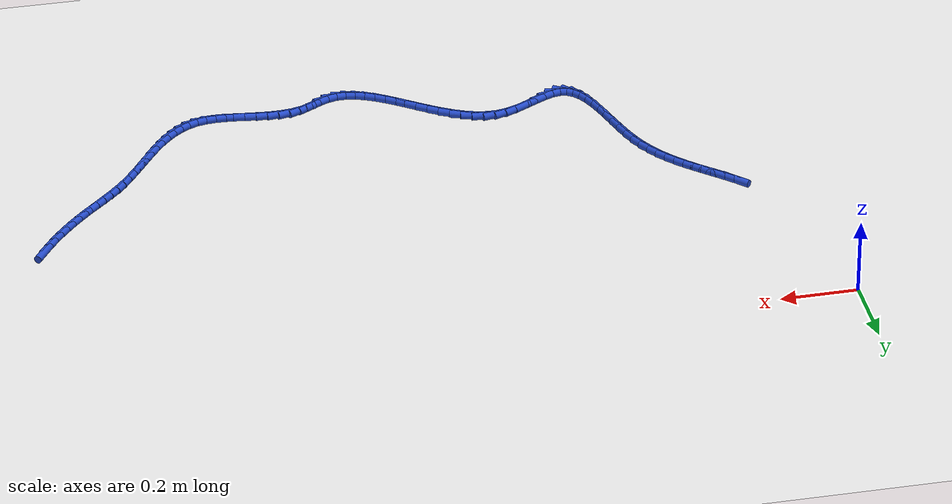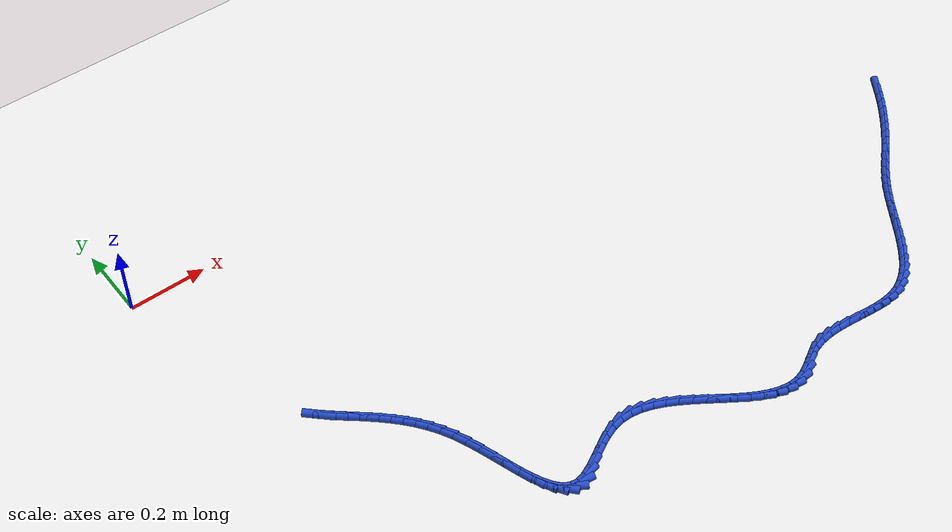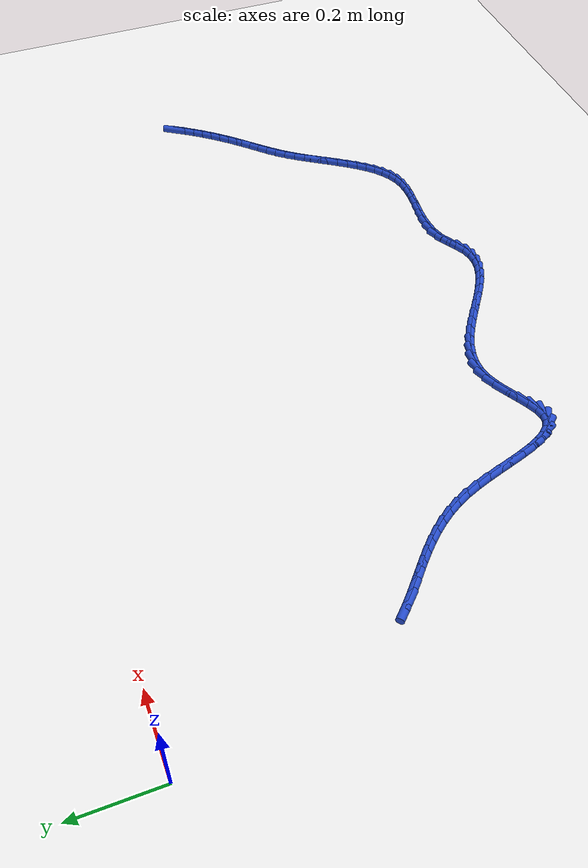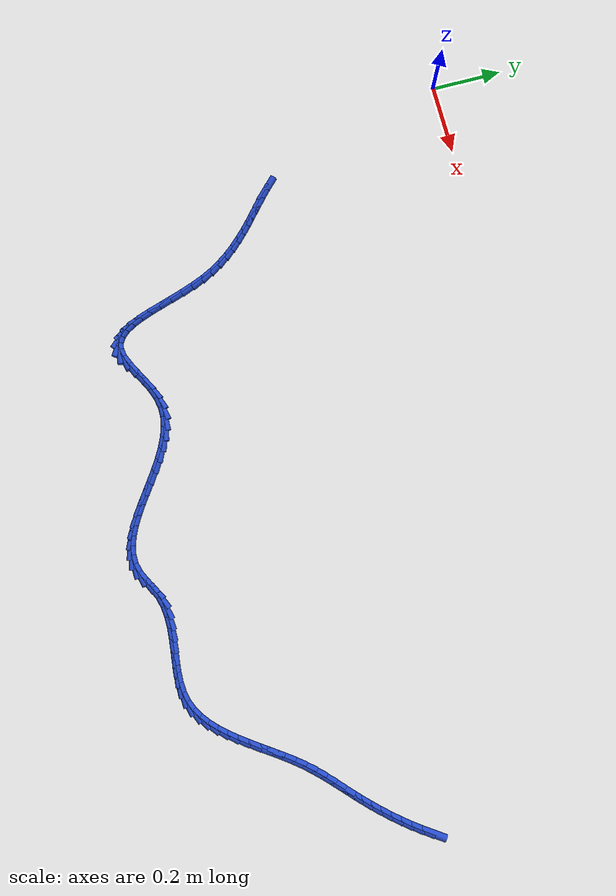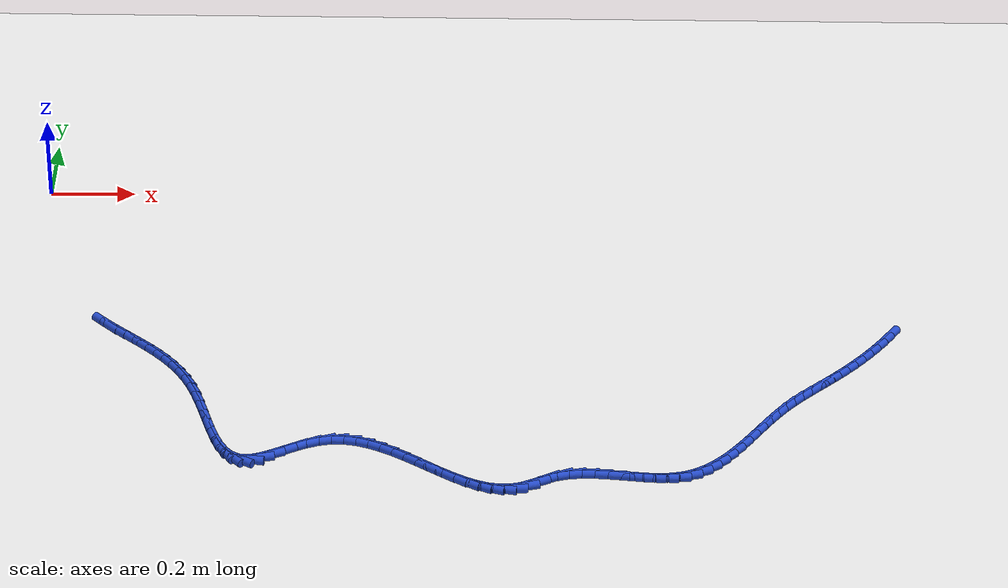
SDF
<sdf version="1.6">
 <world name="default">
  <model name="ground_plane">
   <static>1</static>
   <link name="link">
    <collision name="collision">
     <geometry><plane><normal>0 0 1</normal><size>100 100</size></plane></geometry>
     <surface><friction><ode><mu>100</mu><mu2>50</mu2></ode></friction></surface>
    </collision>
    <visual name="visual">
     <cast_shadows>0</cast_shadows>
     <geometry><plane><normal>0 0 1</normal><size>100 100</size></plane></geometry>
     <material>
      <script><uri>file://media/materials/scripts/gazebo.material</uri><name>Gazebo/WhiteGlow</name></script>
     </material>
    </visual>
   </link>
  </model>
  <model name="line">
   <link name="link_146">
    <pose>1.9613702758241185 -0.5650723410601403 0.01 0 1.57 0.9764073009839448</pose>
    <collision name="collision">
     <geometry><cylinder><radius>0.01</radius><length>0.08</length></cylinder></geometry>
    </collision>
    <visual name="visual">
     <material>
      <script><name>Gazebo/Blue</name><uri>file://media/materials/scripts/gazebo.material</uri></script>
     </material>
     <geometry><cylinder><radius>0.01</radius><length>0.08</length></cylinder></geometry>
    </visual>
   </link>
   <link name="link_147">
    <pose>1.9452535063060237 -0.5889161474131723 0.01 0 1.57 0.9396007451087953</pose>
    <collision name="collision">
     <geometry><cylinder><radius>0.01</radius><length>0.08</length></cylinder></geometry>
    </collision>
    <visual name="visual">
     <material>
      <script><name>Gazebo/Blue</name><uri>file://media/materials/scripts/gazebo.material</uri></script>
     </material>
     <geometry><cylinder><radius>0.01</radius><length>0.08</length></cylinder></geometry>
    </visual>
   </link>
   <link name="link_148">
    <pose>1.9282345556770946 -0.6121995581208013 0.01 0 1.57 0.9057461529218316</pose>
    <collision name="collision">
     <geometry><cylinder><radius>0.01</radius><length>0.08</length></cylinder></geometry>
    </collision>
    <visual name="visual">
     <material>
      <script><name>Gazebo/Blue</name><uri>file://media/materials/scripts/gazebo.material</uri></script>
     </material>
     <geometry><cylinder><radius>0.01</radius><length>0.08</length></cylinder></geometry>
    </visual>
   </link>
   <link name="link_149">
    <pose>1.9104306109496643 -0.6349020425918078 0.01 0 1.57 0.8746117254032889</pose>
    <collision name="collision">
     <geometry><cylinder><radius>0.01</radius><length>0.08</length></cylinder></geometry>
    </collision>
    <visual name="visual">
     <material>
      <script><name>Gazebo/Blue</name><uri>file://media/materials/scripts/gazebo.material</uri></script>
     </material>
     <geometry><cylinder><radius>0.01</radius><length>0.08</length></cylinder></geometry>
    </visual>
   </link>
   <link name="link_150">
    <pose>1.8919588591360657 -0.6570030702349723 0.01 0 1.57 0.8459803008798261</pose>
    <collision name="collision">
     <geometry><cylinder><radius>0.01</radius><length>0.08</length></cylinder></geometry>
    </collision>
    <visual name="visual">
     <material>
      <script><name>Gazebo/Blue</name><uri>file://media/materials/scripts/gazebo.material</uri></script>
     </material>
     <geometry><cylinder><radius>0.01</radius><length>0.08</length></cylinder></geometry>
    </visual>
   </link>
   <link name="link_151">
    <pose>1.8729364872486332 -0.6784821104590758 0.01 0 1.57 0.8196522584449281</pose>
    <collision name="collision">
     <geometry><cylinder><radius>0.01</radius><length>0.08</length></cylinder></geometry>
    </collision>
    <visual name="visual">
     <material>
      <script><name>Gazebo/Blue</name><uri>file://media/materials/scripts/gazebo.material</uri></script>
     </material>
     <geometry><cylinder><radius>0.01</radius><length>0.08</length></cylinder></geometry>
    </visual>
   </link>
   <link name="link_152">
    <pose>1.8534806822996992 -0.6993186326728987 0.01 0 1.57 0.7954470764126949</pose>
    <collision name="collision">
     <geometry><cylinder><radius>0.01</radius><length>0.08</length></cylinder></geometry>
    </collision>
    <visual name="visual">
     <material>
      <script><name>Gazebo/Blue</name><uri>file://media/materials/scripts/gazebo.material</uri></script>
     </material>
     <geometry><cylinder><radius>0.01</radius><length>0.08</length></cylinder></geometry>
    </visual>
   </link>
   <link name="link_153">
    <pose>1.8337086313015982 -0.7194921062852218 0.01 0 1.57 0.7747744593314235</pose>
    <collision name="collision">
     <geometry><cylinder><radius>0.01</radius><length>0.08</length></cylinder></geometry>
    </collision>
    <visual name="visual">
     <material>
      <script><name>Gazebo/Blue</name><uri>file://media/materials/scripts/gazebo.material</uri></script>
     </material>
     <geometry><cylinder><radius>0.01</radius><length>0.08</length></cylinder></geometry>
    </visual>
   </link>
   <link name="link_154">
    <pose>1.8137415879393823 -0.7390393458061346 0.01 0 1.57 0.7651973616180738</pose>
    <collision name="collision">
     <geometry><cylinder><radius>0.01</radius><length>0.08</length></cylinder></geometry>
    </collision>
    <visual name="visual">
     <material>
      <script><name>Gazebo/Blue</name><uri>file://media/materials/scripts/gazebo.material</uri></script>
     </material>
     <geometry><cylinder><radius>0.01</radius><length>0.08</length></cylinder></geometry>
    </visual>
   </link>
   <link name="link_155">
    <pose>1.79372000759917 -0.7582679334147244 0.01 0 1.57 0.7692719922578977</pose>
    <collision name="collision">
     <geometry><cylinder><radius>0.01</radius><length>0.08</length></cylinder></geometry>
    </collision>
    <visual name="visual">
     <material>
      <script><name>Gazebo/Blue</name><uri>file://media/materials/scripts/gazebo.material</uri></script>
     </material>
     <geometry><cylinder><radius>0.01</radius><length>0.08</length></cylinder></geometry>
    </visual>
   </link>
   <link name="link_156">
    <pose>1.7737900075970328 -0.7775652914860385 0.01 0 1.57 0.7869511971120173</pose>
    <collision name="collision">
     <geometry><cylinder><radius>0.01</radius><length>0.08</length></cylinder></geometry>
    </collision>
    <visual name="visual">
     <material>
      <script><name>Gazebo/Blue</name><uri>file://media/materials/scripts/gazebo.material</uri></script>
     </material>
     <geometry><cylinder><radius>0.01</radius><length>0.08</length></cylinder></geometry>
    </visual>
   </link>
   <link name="link_157">
    <pose>1.7540977060598821 -0.7973188538289471 0.01 0 1.57 0.8176809758326741</pose>
    <collision name="collision">
     <geometry><cylinder><radius>0.01</radius><length>0.08</length></cylinder></geometry>
    </collision>
    <visual name="visual">
     <material>
      <script><name>Gazebo/Blue</name><uri>file://media/materials/scripts/gazebo.material</uri></script>
     </material>
     <geometry><cylinder><radius>0.01</radius><length>0.08</length></cylinder></geometry>
    </visual>
   </link>
   <link name="link_158">
    <pose>1.7347892211146276 -0.8179160542523207 0.01 0 1.57 0.8603611152247842</pose>
    <collision name="collision">
     <geometry><cylinder><radius>0.01</radius><length>0.08</length></cylinder></geometry>
    </collision>
    <visual name="visual">
     <material>
      <script><name>Gazebo/Blue</name><uri>file://media/materials/scripts/gazebo.material</uri></script>
     </material>
     <geometry><cylinder><radius>0.01</radius><length>0.08</length></cylinder></geometry>
    </visual>
   </link>
   <link name="link_159">
    <pose>1.7160106708642235 -0.8397443265038634 0.01 0 1.57 0.908736056514942</pose>
    <collision name="collision">
     <geometry><cylinder><radius>0.01</radius><length>0.08</length></cylinder></geometry>
    </collision>
    <visual name="visual">
     <material>
      <script><name>Gazebo/Blue</name><uri>file://media/materials/scripts/gazebo.material</uri></script>
     </material>
     <geometry><cylinder><radius>0.01</radius><length>0.08</length></cylinder></geometry>
    </visual>
   </link>
   <link name="link_160">
    <pose>1.6978505848983496 -0.863044068678062 0.01 0 1.57 0.9445140722194537</pose>
    <collision name="collision">
     <geometry><cylinder><radius>0.01</radius><length>0.08</length></cylinder></geometry>
    </collision>
    <visual name="visual">
     <material>
      <script><name>Gazebo/Blue</name><uri>file://media/materials/scripts/gazebo.material</uri></script>
     </material>
     <geometry><cylinder><radius>0.01</radius><length>0.08</length></cylinder></geometry>
    </visual>
   </link>
   <link name="link_161">
    <pose>1.6801722777886856 -0.8874806572999523 0.01 0 1.57 0.9649139812558574</pose>
    <collision name="collision">
     <geometry><cylinder><radius>0.01</radius><length>0.08</length></cylinder></geometry>
    </collision>
    <visual name="visual">
     <material>
      <script><name>Gazebo/Blue</name><uri>file://media/materials/scripts/gazebo.material</uri></script>
     </material>
     <geometry><cylinder><radius>0.01</radius><length>0.08</length></cylinder></geometry>
    </visual>
   </link>
   <link name="link_162">
    <pose>1.6627840165757342 -0.9125789209060114 0.01 0 1.57 0.9710197391764839</pose>
    <collision name="collision">
     <geometry><cylinder><radius>0.01</radius><length>0.08</length></cylinder></geometry>
    </collision>
    <visual name="visual">
     <material>
      <script><name>Gazebo/Blue</name><uri>file://media/materials/scripts/gazebo.material</uri></script>
     </material>
     <geometry><cylinder><radius>0.01</radius><length>0.08</length></cylinder></geometry>
    </visual>
   </link>
   <link name="link_163">
    <pose>1.645494068299997 -0.9378636880327171 0.01 0 1.57 0.963135139433481</pose>
    <collision name="collision">
     <geometry><cylinder><radius>0.01</radius><length>0.08</length></cylinder></geometry>
    </collision>
    <visual name="visual">
     <material>
      <script><name>Gazebo/Blue</name><uri>file://media/materials/scripts/gazebo.material</uri></script>
     </material>
     <geometry><cylinder><radius>0.01</radius><length>0.08</length></cylinder></geometry>
    </visual>
   </link>
   <link name="link_164">
    <pose>1.6281107000019766 -0.9628597872165465 0.01 0 1.57 0.9407849093785468</pose>
    <collision name="collision">
     <geometry><cylinder><radius>0.01</radius><length>0.08</length></cylinder></geometry>
    </collision>
    <visual name="visual">
     <material>
      <script><name>Gazebo/Blue</name><uri>file://media/materials/scripts/gazebo.material</uri></script>
     </material>
     <geometry><cylinder><radius>0.01</radius><length>0.08</length></cylinder></geometry>
    </visual>
   </link>
   <link name="link_165">
    <pose>1.6104421787221739 -0.9870920469939767 0.01 0 1.57 0.902698708071725</pose>
    <collision name="collision">
     <geometry><cylinder><radius>0.01</radius><length>0.08</length></cylinder></geometry>
    </collision>
    <visual name="visual">
     <material>
      <script><name>Gazebo/Blue</name><uri>file://media/materials/scripts/gazebo.material</uri></script>
     </material>
     <geometry><cylinder><radius>0.01</radius><length>0.08</length></cylinder></geometry>
    </visual>
   </link>
   <link name="link_166">
    <pose>1.5922967715010918 -1.0100852959014854 0.01 0 1.57 0.8468037881241035</pose>
    <collision name="collision">
     <geometry><cylinder><radius>0.01</radius><length>0.08</length></cylinder></geometry>
    </collision>
    <visual name="visual">
     <material>
      <script><name>Gazebo/Blue</name><uri>file://media/materials/scripts/gazebo.material</uri></script>
     </material>
     <geometry><cylinder><radius>0.01</radius><length>0.08</length></cylinder></geometry>
    </visual>
   </link>
   <link name="link_167">
    <pose>1.573482745379232 -1.0313643624755497 0.01 0 1.57 0.7703166571582392</pose>
    <collision name="collision">
     <geometry><cylinder><radius>0.01</radius><length>0.08</length></cylinder></geometry>
    </collision>
    <visual name="visual">
     <material>
      <script><name>Gazebo/Blue</name><uri>file://media/materials/scripts/gazebo.material</uri></script>
     </material>
     <geometry><cylinder><radius>0.01</radius><length>0.08</length></cylinder></geometry>
    </visual>
   </link>
   <link name="link_168">
    <pose>1.5538083673970957 -1.0504540752526474 0.01 0 1.57 0.6701351783459576</pose>
    <collision name="collision">
     <geometry><cylinder><radius>0.01</radius><length>0.08</length></cylinder></geometry>
    </collision>
    <visual name="visual">
     <material>
      <script><name>Gazebo/Blue</name><uri>file://media/materials/scripts/gazebo.material</uri></script>
     </material>
     <geometry><cylinder><radius>0.01</radius><length>0.08</length></cylinder></geometry>
    </visual>
   </link>
   <link name="link_169">
    <pose>1.5330819045951867 -1.0668792627692554 0.01 0 1.57 0.5438702884663065</pose>
    <collision name="collision">
     <geometry><cylinder><radius>0.01</radius><length>0.08</length></cylinder></geometry>
    </collision>
    <visual name="visual">
     <material>
      <script><name>Gazebo/Blue</name><uri>file://media/materials/scripts/gazebo.material</uri></script>
     </material>
     <geometry><cylinder><radius>0.01</radius><length>0.08</length></cylinder></geometry>
    </visual>
   </link>
   <link name="link_170">
    <pose>1.5111116240140052 -1.0801647535618508 0.01 0 1.57 0.39180930444206213</pose>
    <collision name="collision">
     <geometry><cylinder><radius>0.01</radius><length>0.08</length></cylinder></geometry>
    </collision>
    <visual name="visual">
     <material>
      <script><name>Gazebo/Blue</name><uri>file://media/materials/scripts/gazebo.material</uri></script>
     </material>
     <geometry><cylinder><radius>0.01</radius><length>0.08</length></cylinder></geometry>
    </visual>
   </link>
   <link name="link_171">
    <pose>1.4877057926940538 -1.0898353761669117 0.01 0 1.57 0.22217547257328926</pose>
    <collision name="collision">
     <geometry><cylinder><radius>0.01</radius><length>0.08</length></cylinder></geometry>
    </collision>
    <visual name="visual">
     <material>
      <script><name>Gazebo/Blue</name><uri>file://media/materials/scripts/gazebo.material</uri></script>
     </material>
     <geometry><cylinder><radius>0.01</radius><length>0.08</length></cylinder></geometry>
    </visual>
   </link>
   <link name="link_172">
    <pose>1.4626970450483936 -1.0954849721868123 0.01 0 1.57 0.07675678753046156</pose>
    <collision name="collision">
     <geometry><cylinder><radius>0.01</radius><length>0.08</length></cylinder></geometry>
    </collision>
    <visual name="visual">
     <material>
      <script><name>Gazebo/Blue</name><uri>file://media/materials/scripts/gazebo.material</uri></script>
     </material>
     <geometry><cylinder><radius>0.01</radius><length>0.08</length></cylinder></geometry>
    </visual>
   </link>
   <link name="link_173">
    <pose>1.4362057703383677 -1.0975223600647241 0.01 0 1.57 -0.022916729695242173</pose>
    <collision name="collision">
     <geometry><cylinder><radius>0.01</radius><length>0.08</length></cylinder></geometry>
    </collision>
    <visual name="visual">
     <material>
      <script><name>Gazebo/Blue</name><uri>file://media/materials/scripts/gazebo.material</uri></script>
     </material>
     <geometry><cylinder><radius>0.01</radius><length>0.08</length></cylinder></geometry>
    </visual>
   </link>
   <link name="link_174">
    <pose>1.4085401577819965 -1.0968882436883567 0.01 0 1.57 -0.08238914372151765</pose>
    <collision name="collision">
     <geometry><cylinder><radius>0.01</radius><length>0.08</length></cylinder></geometry>
    </collision>
    <visual name="visual">
     <material>
      <script><name>Gazebo/Blue</name><uri>file://media/materials/scripts/gazebo.material</uri></script>
     </material>
     <geometry><cylinder><radius>0.01</radius><length>0.08</length></cylinder></geometry>
    </visual>
   </link>
   <link name="link_175">
    <pose>1.3800116247011167 -1.0945324695536607 0.01 0 1.57 -0.10713911201137834</pose>
    <collision name="collision">
     <geometry><cylinder><radius>0.01</radius><length>0.08</length></cylinder></geometry>
    </collision>
    <visual name="visual">
     <material>
      <script><name>Gazebo/Blue</name><uri>file://media/materials/scripts/gazebo.material</uri></script>
     </material>
     <geometry><cylinder><radius>0.01</radius><length>0.08</length></cylinder></geometry>
    </visual>
   </link>
   <link name="link_176">
    <pose>1.3509315884175621 -1.0914048841565875 0.01 0 1.57 -0.10026084898970024</pose>
    <collision name="collision">
     <geometry><cylinder><radius>0.01</radius><length>0.08</length></cylinder></geometry>
    </collision>
    <visual name="visual">
     <material>
      <script><name>Gazebo/Blue</name><uri>file://media/materials/scripts/gazebo.material</uri></script>
     </material>
     <geometry><cylinder><radius>0.01</radius><length>0.08</length></cylinder></geometry>
    </visual>
   </link>
   <link name="link_177">
    <pose>1.321611466253168 -1.0884553339930876 0.01 0 1.57 -0.06220149353363286</pose>
    <collision name="collision">
     <geometry><cylinder><radius>0.01</radius><length>0.08</length></cylinder></geometry>
    </collision>
    <visual name="visual">
     <material>
      <script><name>Gazebo/Blue</name><uri>file://media/materials/scripts/gazebo.material</uri></script>
     </material>
     <geometry><cylinder><radius>0.01</radius><length>0.08</length></cylinder></geometry>
    </visual>
   </link>
   <link name="link_178">
    <pose>1.2923626755297684 -1.0866336655591116 0.01 0 1.57 0.008870390886680886</pose>
    <collision name="collision">
     <geometry><cylinder><radius>0.01</radius><length>0.08</length></cylinder></geometry>
    </collision>
    <visual name="visual">
     <material>
      <script><name>Gazebo/Blue</name><uri>file://media/materials/scripts/gazebo.material</uri></script>
     </material>
     <geometry><cylinder><radius>0.01</radius><length>0.08</length></cylinder></geometry>
    </visual>
   </link>
   <link name="link_179">
    <pose>1.2634966335691988 -1.0868897253506105 0.01 0 1.57 0.11603361277166177</pose>
    <collision name="collision">
     <geometry><cylinder><radius>0.01</radius><length>0.08</length></cylinder></geometry>
    </collision>
    <visual name="visual">
     <material>
      <script><name>Gazebo/Blue</name><uri>file://media/materials/scripts/gazebo.material</uri></script>
     </material>
     <geometry><cylinder><radius>0.01</radius><length>0.08</length></cylinder></geometry>
    </visual>
   </link>
   <link name="link_180">
    <pose>1.2353247576932942 -1.090173359863535 0.01 0 1.57 0.26117660452858166</pose>
    <collision name="collision">
     <geometry><cylinder><radius>0.01</radius><length>0.08</length></cylinder></geometry>
    </collision>
    <visual name="visual">
     <material>
      <script><name>Gazebo/Blue</name><uri>file://media/materials/scripts/gazebo.material</uri></script>
     </material>
     <geometry><cylinder><radius>0.01</radius><length>0.08</length></cylinder></geometry>
    </visual>
   </link>
   <link name="link_181">
    <pose>1.2081584652238893 -1.097434415593836 0.01 0 1.57 0.4289839174552372</pose>
    <collision name="collision">
     <geometry><cylinder><radius>0.01</radius><length>0.08</length></cylinder></geometry>
    </collision>
    <visual name="visual">
     <material>
      <script><name>Gazebo/Blue</name><uri>file://media/materials/scripts/gazebo.material</uri></script>
     </material>
     <geometry><cylinder><radius>0.01</radius><length>0.08</length></cylinder></geometry>
    </visual>
   </link>
   <link name="link_182">
    <pose>1.182250830087267 -1.1092843553952614 0.01 0 1.57 0.5100248529614992</pose>
    <collision name="collision">
     <geometry><cylinder><radius>0.01</radius><length>0.08</length></cylinder></geometry>
    </collision>
    <visual name="visual">
     <material>
      <script><name>Gazebo/Blue</name><uri>file://media/materials/scripts/gazebo.material</uri></script>
     </material>
     <geometry><cylinder><radius>0.01</radius><length>0.08</length></cylinder></geometry>
    </visual>
   </link>
   <link name="link_183">
    <pose>1.1573197329940952 -1.123230595333245 0.01 0 1.57 0.45116247451343244</pose>
    <collision name="collision">
     <geometry><cylinder><radius>0.01</radius><length>0.08</length></cylinder></geometry>
    </collision>
    <visual name="visual">
     <material>
      <script><name>Gazebo/Blue</name><uri>file://media/materials/scripts/gazebo.material</uri></script>
     </material>
     <geometry><cylinder><radius>0.01</radius><length>0.08</length></cylinder></geometry>
    </visual>
   </link>
   <link name="link_184">
    <pose>1.132795429511266 -1.135112365334599 0.01 0 1.57 0.25242415061145385</pose>
    <collision name="collision">
     <geometry><cylinder><radius>0.01</radius><length>0.08</length></cylinder></geometry>
    </collision>
    <visual name="visual">
     <material>
      <script><name>Gazebo/Blue</name><uri>file://media/materials/scripts/gazebo.material</uri></script>
     </material>
     <geometry><cylinder><radius>0.01</radius><length>0.08</length></cylinder></geometry>
    </visual>
   </link>
   <link name="link_185">
    <pose>1.1081866860013136 -1.1414595934598815 0.01 0 1.57 0.025028456246258754</pose>
    <collision name="collision">
     <geometry><cylinder><radius>0.01</radius><length>0.08</length></cylinder></geometry>
    </collision>
    <visual name="visual">
     <material>
      <script><name>Gazebo/Blue</name><uri>file://media/materials/scripts/gazebo.material</uri></script>
     </material>
     <geometry><cylinder><radius>0.01</radius><length>0.08</length></cylinder></geometry>
    </visual>
   </link>
   <link name="link_186">
    <pose>1.0833792861197724 -1.1420806140618074 0.01 0 1.57 -0.17208021271054194</pose>
    <collision name="collision">
     <geometry><cylinder><radius>0.01</radius><length>0.08</length></cylinder></geometry>
    </collision>
    <visual name="visual">
     <material>
      <script><name>Gazebo/Blue</name><uri>file://media/materials/scripts/gazebo.material</uri></script>
     </material>
     <geometry><cylinder><radius>0.01</radius><length>0.08</length></cylinder></geometry>
    </visual>
   </link>
   <link name="link_187">
    <pose>1.0583682589246226 -1.1377337200796616 0.01 0 1.57 -0.3270896383042776</pose>
    <collision name="collision">
     <geometry><cylinder><radius>0.01</radius><length>0.08</length></cylinder></geometry>
    </collision>
    <visual name="visual">
     <material>
      <script><name>Gazebo/Blue</name><uri>file://media/materials/scripts/gazebo.material</uri></script>
     </material>
     <geometry><cylinder><radius>0.01</radius><length>0.08</length></cylinder></geometry>
    </visual>
   </link>
   <link name="link_188">
    <pose>1.0331486448272704 -1.1291773031780221 0.01 0 1.57 -0.4410973204197668</pose>
    <collision name="collision">
     <geometry><cylinder><radius>0.01</radius><length>0.08</length></cylinder></geometry>
    </collision>
    <visual name="visual">
     <material>
      <script><name>Gazebo/Blue</name><uri>file://media/materials/scripts/gazebo.material</uri></script>
     </material>
     <geometry><cylinder><radius>0.01</radius><length>0.08</length></cylinder></geometry>
    </visual>
   </link>
   <link name="link_189">
    <pose>1.007715484239123 -1.1171697550214683 0.01 0 1.57 -0.5203851808502251</pose>
    <collision name="collision">
     <geometry><cylinder><radius>0.01</radius><length>0.08</length></cylinder></geometry>
    </collision>
    <visual name="visual">
     <material>
      <script><name>Gazebo/Blue</name><uri>file://media/materials/scripts/gazebo.material</uri></script>
     </material>
     <geometry><cylinder><radius>0.01</radius><length>0.08</length></cylinder></geometry>
    </visual>
   </link>
   <link name="link_190">
    <pose>0.9820638175715857 -1.1024694672745792 0.01 0 1.57 -0.5713544896323663</pose>
    <collision name="collision">
     <geometry><cylinder><radius>0.01</radius><length>0.08</length></cylinder></geometry>
    </collision>
    <visual name="visual">
     <material>
      <script><name>Gazebo/Blue</name><uri>file://media/materials/scripts/gazebo.material</uri></script>
     </material>
     <geometry><cylinder><radius>0.01</radius><length>0.08</length></cylinder></geometry>
    </visual>
   </link>
   <link name="link_191">
    <pose>0.9561886852360659 -1.0858348316019342 0.01 0 1.57 -0.5987512518176806</pose>
    <collision name="collision">
     <geometry><cylinder><radius>0.01</radius><length>0.08</length></cylinder></geometry>
    </collision>
    <visual name="visual">
     <material>
      <script><name>Gazebo/Blue</name><uri>file://media/materials/scripts/gazebo.material</uri></script>
     </material>
     <geometry><cylinder><radius>0.01</radius><length>0.08</length></cylinder></geometry>
    </visual>
   </link>
   <link name="link_192">
    <pose>0.93008512764397 -1.068024239668112 0.01 0 1.57 -0.6054134577931609</pose>
    <collision name="collision">
     <geometry><cylinder><radius>0.01</radius><length>0.08</length></cylinder></geometry>
    </collision>
    <visual name="visual">
     <material>
      <script><name>Gazebo/Blue</name><uri>file://media/materials/scripts/gazebo.material</uri></script>
     </material>
     <geometry><cylinder><radius>0.01</radius><length>0.08</length></cylinder></geometry>
    </visual>
   </link>
   <link name="link_193">
    <pose>0.9037481852067041 -1.0497960831376918 0.01 0 1.57 -0.5924303871208427</pose>
    <collision name="collision">
     <geometry><cylinder><radius>0.01</radius><length>0.08</length></cylinder></geometry>
    </collision>
    <visual name="visual">
     <material>
      <script><name>Gazebo/Blue</name><uri>file://media/materials/scripts/gazebo.material</uri></script>
     </material>
     <geometry><cylinder><radius>0.01</radius><length>0.08</length></cylinder></geometry>
    </visual>
   </link>
   <link name="link_194">
    <pose>0.8771728983356746 -1.0319087536752523 0.01 0 1.57 -0.5593093285672281</pose>
    <collision name="collision">
     <geometry><cylinder><radius>0.01</radius><length>0.08</length></cylinder></geometry>
    </collision>
    <visual name="visual">
     <material>
      <script><name>Gazebo/Blue</name><uri>file://media/materials/scripts/gazebo.material</uri></script>
     </material>
     <geometry><cylinder><radius>0.01</radius><length>0.08</length></cylinder></geometry>
    </visual>
   </link>
   <link name="link_195">
    <pose>0.8503543074422882 -1.0151206429453732 0.01 0 1.57 -0.504082780983298</pose>
    <collision name="collision">
     <geometry><cylinder><radius>0.01</radius><length>0.08</length></cylinder></geometry>
    </collision>
    <visual name="visual">
     <material>
      <script><name>Gazebo/Blue</name><uri>file://media/materials/scripts/gazebo.material</uri></script>
     </material>
     <geometry><cylinder><radius>0.01</radius><length>0.08</length></cylinder></geometry>
    </visual>
   </link>
   <link name="link_196">
    <pose>0.8232874529379515 -1.000190142612633 0.01 0 1.57 -0.42347663776084693</pose>
    <collision name="collision">
     <geometry><cylinder><radius>0.01</radius><length>0.08</length></cylinder></geometry>
    </collision>
    <visual name="visual">
     <material>
      <script><name>Gazebo/Blue</name><uri>file://media/materials/scripts/gazebo.material</uri></script>
     </material>
     <geometry><cylinder><radius>0.01</radius><length>0.08</length></cylinder></geometry>
    </visual>
   </link>
   <link name="link_197">
    <pose>0.7959673752340706 -0.9878756443416107 0.01 0 1.57 -0.3134829729315978</pose>
    <collision name="collision">
     <geometry><cylinder><radius>0.01</radius><length>0.08</length></cylinder></geometry>
    </collision>
    <visual name="visual">
     <material>
      <script><name>Gazebo/Blue</name><uri>file://media/materials/scripts/gazebo.material</uri></script>
     </material>
     <geometry><cylinder><radius>0.01</radius><length>0.08</length></cylinder></geometry>
    </visual>
   </link>
   <link name="link_198">
    <pose>0.7683891147420518 -0.9789355397968856 0.01 0 1.57 -0.1709820624631865</pose>
    <collision name="collision">
     <geometry><cylinder><radius>0.01</radius><length>0.08</length></cylinder></geometry>
    </collision>
    <visual name="visual">
     <material>
      <script><name>Gazebo/Blue</name><uri>file://media/materials/scripts/gazebo.material</uri></script>
     </material>
     <geometry><cylinder><radius>0.01</radius><length>0.08</length></cylinder></geometry>
    </visual>
   </link>
   <link name="link_199">
    <pose>0.7405477118733023 -0.9741282206430371 0.01 0 1.57 0.0029832490230326794</pose>
    <collision name="collision">
     <geometry><cylinder><radius>0.01</radius><length>0.08</length></cylinder></geometry>
    </collision>
    <visual name="visual">
     <material>
      <script><name>Gazebo/Blue</name><uri>file://media/materials/scripts/gazebo.material</uri></script>
     </material>
     <geometry><cylinder><radius>0.01</radius><length>0.08</length></cylinder></geometry>
    </visual>
   </link>
   <link name="link_200">
    <pose>0.712438207039228 -0.9742120785446435 0.01 0 1.57 0.1982501846399752</pose>
    <collision name="collision">
     <geometry><cylinder><radius>0.01</radius><length>0.08</length></cylinder></geometry>
    </collision>
    <visual name="visual">
     <material>
      <script><name>Gazebo/Blue</name><uri>file://media/materials/scripts/gazebo.material</uri></script>
     </material>
     <geometry><cylinder><radius>0.01</radius><length>0.08</length></cylinder></geometry>
    </visual>
   </link>
   <link name="link_201">
    <pose>0.6840610493146876 -0.979912736302845 0.01 0 1.57 0.3635115929780953</pose>
    <collision name="collision">
     <geometry><cylinder><radius>0.01</radius><length>0.08</length></cylinder></geometry>
    </collision>
    <visual name="visual">
     <material>
      <script><name>Gazebo/Blue</name><uri>file://media/materials/scripts/gazebo.material</uri></script>
     </material>
     <geometry><cylinder><radius>0.01</radius><length>0.08</length></cylinder></geometry>
    </visual>
   </link>
   <link name="link_202">
    <pose>0.6556185609094938 -0.9907327505675729 0.01 0 1.57 0.45958661318427685</pose>
    <collision name="collision">
     <geometry><cylinder><radius>0.01</radius><length>0.08</length></cylinder></geometry>
    </collision>
    <visual name="visual">
     <material>
      <script><name>Gazebo/Blue</name><uri>file://media/materials/scripts/gazebo.material</uri></script>
     </material>
     <geometry><cylinder><radius>0.01</radius><length>0.08</length></cylinder></geometry>
    </visual>
   </link>
   <link name="link_203">
    <pose>0.6275705520519425 -1.0046146641720728 0.01 0 1.57 0.4982439448054092</pose>
    <collision name="collision">
     <geometry><cylinder><radius>0.01</radius><length>0.08</length></cylinder></geometry>
    </collision>
    <visual name="visual">
     <material>
      <script><name>Gazebo/Blue</name><uri>file://media/materials/scripts/gazebo.material</uri></script>
     </material>
     <geometry><cylinder><radius>0.01</radius><length>0.08</length></cylinder></geometry>
    </visual>
   </link>
   <link name="link_204">
    <pose>0.6003935714765856 -1.0193996082365873 0.01 0 1.57 0.48249561571242994</pose>
    <collision name="collision">
     <geometry><cylinder><radius>0.01</radius><length>0.08</length></cylinder></geometry>
    </collision>
    <visual name="visual">
     <material>
      <script><name>Gazebo/Blue</name><uri>file://media/materials/scripts/gazebo.material</uri></script>
     </material>
     <geometry><cylinder><radius>0.01</radius><length>0.08</length></cylinder></geometry>
    </visual>
   </link>
   <link name="link_205">
    <pose>0.5745641679179756 -1.0329287138813592 0.01 0 1.57 0.39876703098587235</pose>
    <collision name="collision">
     <geometry><cylinder><radius>0.01</radius><length>0.08</length></cylinder></geometry>
    </collision>
    <visual name="visual">
     <material>
      <script><name>Gazebo/Blue</name><uri>file://media/materials/scripts/gazebo.material</uri></script>
     </material>
     <geometry><cylinder><radius>0.01</radius><length>0.08</length></cylinder></geometry>
    </visual>
   </link>
   <link name="link_206">
    <pose>0.5505588901106651 -1.0430431122266322 0.01 0 1.57 0.20623553453831167</pose>
    <collision name="collision">
     <geometry><cylinder><radius>0.01</radius><length>0.08</length></cylinder></geometry>
    </collision>
    <visual name="visual">
     <material>
      <script><name>Gazebo/Blue</name><uri>file://media/materials/scripts/gazebo.material</uri></script>
     </material>
     <geometry><cylinder><radius>0.01</radius><length>0.08</length></cylinder></geometry>
    </visual>
   </link>
   <link name="link_207">
    <pose>0.5288542867892062 -1.0475839343926487 0.01 0 1.57 -0.150390873559793</pose>
    <collision name="collision">
     <geometry><cylinder><radius>0.01</radius><length>0.08</length></cylinder></geometry>
    </collision>
    <visual name="visual">
     <material>
      <script><name>Gazebo/Blue</name><uri>file://media/materials/scripts/gazebo.material</uri></script>
     </material>
     <geometry><cylinder><radius>0.01</radius><length>0.08</length></cylinder></geometry>
    </visual>
   </link>
   <link name="link_208">
    <pose>0.5098382055623777 -1.0447023316960784 0.01 0 1.57 -0.5504304736211262</pose>
    <collision name="collision">
     <geometry><cylinder><radius>0.01</radius><length>0.08</length></cylinder></geometry>
    </collision>
    <visual name="visual">
     <material>
      <script><name>Gazebo/Blue</name><uri>file://media/materials/scripts/gazebo.material</uri></script>
     </material>
     <geometry><cylinder><radius>0.01</radius><length>0.08</length></cylinder></geometry>
    </visual>
   </link>
   <link name="link_209">
    <pose>0.4933215109366719 -1.0345660748949472 0.01 0 1.57 -0.8494632421311112</pose>
    <collision name="collision">
     <geometry><cylinder><radius>0.01</radius><length>0.08</length></cylinder></geometry>
    </collision>
    <visual name="visual">
     <material>
      <script><name>Gazebo/Blue</name><uri>file://media/materials/scripts/gazebo.material</uri></script>
     </material>
     <geometry><cylinder><radius>0.01</radius><length>0.08</length></cylinder></geometry>
    </visual>
   </link>
   <link name="link_210">
    <pose>0.4788842971748424 -1.0181495021461595 0.01 0 1.57 -1.0390199386183034</pose>
    <collision name="collision">
     <geometry><cylinder><radius>0.01</radius><length>0.08</length></cylinder></geometry>
    </collision>
    <visual name="visual">
     <material>
      <script><name>Gazebo/Blue</name><uri>file://media/materials/scripts/gazebo.material</uri></script>
     </material>
     <geometry><cylinder><radius>0.01</radius><length>0.08</length></cylinder></geometry>
    </visual>
   </link>
   <link name="link_211">
    <pose>0.46610604924275784 -0.9964290811662904 0.01 0 1.57 -1.153758897328482</pose>
    <collision name="collision">
     <geometry><cylinder><radius>0.01</radius><length>0.08</length></cylinder></geometry>
    </collision>
    <visual name="visual">
     <material>
      <script><name>Gazebo/Blue</name><uri>file://media/materials/scripts/gazebo.material</uri></script>
     </material>
     <geometry><cylinder><radius>0.01</radius><length>0.08</length></cylinder></geometry>
    </visual>
   </link>
   <link name="link_212">
    <pose>0.45456625210628704 -0.9703812796719143 0.01 0 1.57 -1.2210817167550936</pose>
    <collision name="collision">
     <geometry><cylinder><radius>0.01</radius><length>0.08</length></cylinder></geometry>
    </collision>
    <visual name="visual">
     <material>
      <script><name>Gazebo/Blue</name><uri>file://media/materials/scripts/gazebo.material</uri></script>
     </material>
     <geometry><cylinder><radius>0.01</radius><length>0.08</length></cylinder></geometry>
    </visual>
   </link>
   <link name="link_213">
    <pose>0.44384439073129867 -0.9409825653796071 0.01 0 1.57 -1.2566166970485477</pose>
    <collision name="collision">
     <geometry><cylinder><radius>0.01</radius><length>0.08</length></cylinder></geometry>
    </collision>
    <visual name="visual">
     <material>
      <script><name>Gazebo/Blue</name><uri>file://media/materials/scripts/gazebo.material</uri></script>
     </material>
     <geometry><cylinder><radius>0.01</radius><length>0.08</length></cylinder></geometry>
    </visual>
   </link>
   <link name="link_214">
    <pose>0.4335199500836613 -0.9092094060059437 0.01 0 1.57 -1.268418130739308</pose>
    <collision name="collision">
     <geometry><cylinder><radius>0.01</radius><length>0.08</length></cylinder></geometry>
    </collision>
    <visual name="visual">
     <material>
      <script><name>Gazebo/Blue</name><uri>file://media/materials/scripts/gazebo.material</uri></script>
     </material>
     <geometry><cylinder><radius>0.01</radius><length>0.08</length></cylinder></geometry>
    </visual>
   </link>
   <link name="link_215">
    <pose>0.42317241512924314 -0.8760382692674984 0.01 0 1.57 -1.2599732169388431</pose>
    <collision name="collision">
     <geometry><cylinder><radius>0.01</radius><length>0.08</length></cylinder></geometry>
    </collision>
    <visual name="visual">
     <material>
      <script><name>Gazebo/Blue</name><uri>file://media/materials/scripts/gazebo.material</uri></script>
     </material>
     <geometry><cylinder><radius>0.01</radius><length>0.08</length></cylinder></geometry>
    </visual>
   </link>
   <link name="link_216">
    <pose>0.41238127083391307 -0.842445622880847 0.01 0 1.57 -1.2316407710924233</pose>
    <collision name="collision">
     <geometry><cylinder><radius>0.01</radius><length>0.08</length></cylinder></geometry>
    </collision>
    <visual name="visual">
     <material>
      <script><name>Gazebo/Blue</name><uri>file://media/materials/scripts/gazebo.material</uri></script>
     </material>
     <geometry><cylinder><radius>0.01</radius><length>0.08</length></cylinder></geometry>
    </visual>
   </link>
   <link name="link_217">
    <pose>0.4007260021635397 -0.8094079345625644 0.01 0 1.57 -1.1810922103269226</pose>
    <collision name="collision">
     <geometry><cylinder><radius>0.01</radius><length>0.08</length></cylinder></geometry>
    </collision>
    <visual name="visual">
     <material>
      <script><name>Gazebo/Blue</name><uri>file://media/materials/scripts/gazebo.material</uri></script>
     </material>
     <geometry><cylinder><radius>0.01</radius><length>0.08</length></cylinder></geometry>
    </visual>
   </link>
   <link name="link_218">
    <pose>0.3877860940839914 -0.7779016720292256 0.01 0 1.57 -1.1061116595727878</pose>
    <collision name="collision">
     <geometry><cylinder><radius>0.01</radius><length>0.08</length></cylinder></geometry>
    </collision>
    <visual name="visual">
     <material>
      <script><name>Gazebo/Blue</name><uri>file://media/materials/scripts/gazebo.material</uri></script>
     </material>
     <geometry><cylinder><radius>0.01</radius><length>0.08</length></cylinder></geometry>
    </visual>
   </link>
   <link name="link_219">
    <pose>0.3731959840967325 -0.7487969494589258 0.01 0 1.57 -1.024663287355408</pose>
    <collision name="collision">
     <geometry><cylinder><radius>0.01</radius><length>0.08</length></cylinder></geometry>
    </collision>
    <visual name="visual">
     <material>
      <script><name>Gazebo/Blue</name><uri>file://media/materials/scripts/gazebo.material</uri></script>
     </material>
     <geometry><cylinder><radius>0.01</radius><length>0.08</length></cylinder></geometry>
    </visual>
   </link>
   <link name="link_220">
    <pose>0.3570057700346591 -0.7221594241184627 0.01 0 1.57 -0.9486630595358981</pose>
    <collision name="collision">
     <geometry><cylinder><radius>0.01</radius><length>0.08</length></cylinder></geometry>
    </collision>
    <visual name="visual">
     <material>
      <script><name>Gazebo/Blue</name><uri>file://media/materials/scripts/gazebo.material</uri></script>
     </material>
     <geometry><cylinder><radius>0.01</radius><length>0.08</length></cylinder></geometry>
    </visual>
   </link>
   <link name="link_221">
    <pose>0.3394556441814721 -0.6976868500055802 0.01 0 1.57 -0.8806238875989547</pose>
    <collision name="collision">
     <geometry><cylinder><radius>0.01</radius><length>0.08</length></cylinder></geometry>
    </collision>
    <visual name="visual">
     <material>
      <script><name>Gazebo/Blue</name><uri>file://media/materials/scripts/gazebo.material</uri></script>
     </material>
     <geometry><cylinder><radius>0.01</radius><length>0.08</length></cylinder></geometry>
    </visual>
   </link>
   <link name="link_222">
    <pose>0.3207867798735276 -0.6750750824172584 0.01 0 1.57 -0.8225391865659833</pose>
    <collision name="collision">
     <geometry><cylinder><radius>0.01</radius><length>0.08</length></cylinder></geometry>
    </collision>
    <visual name="visual">
     <material>
      <script><name>Gazebo/Blue</name><uri>file://media/materials/scripts/gazebo.material</uri></script>
     </material>
     <geometry><cylinder><radius>0.01</radius><length>0.08</length></cylinder></geometry>
    </visual>
   </link>
   <link name="link_223">
    <pose>0.30124035044718167 -0.6540199766504782 0.01 0 1.57 -0.7758891674639389</pose>
    <collision name="collision">
     <geometry><cylinder><radius>0.01</radius><length>0.08</length></cylinder></geometry>
    </collision>
    <visual name="visual">
     <material>
      <script><name>Gazebo/Blue</name><uri>file://media/materials/scripts/gazebo.material</uri></script>
     </material>
     <geometry><cylinder><radius>0.01</radius><length>0.08</length></cylinder></geometry>
    </visual>
   </link>
   <link name="link_224">
    <pose>0.2810575292387902 -0.6342173880022189 0.01 0 1.57 -0.7417099059073461</pose>
    <collision name="collision">
     <geometry><cylinder><radius>0.01</radius><length>0.08</length></cylinder></geometry>
    </collision>
    <visual name="visual">
     <material>
      <script><name>Gazebo/Blue</name><uri>file://media/materials/scripts/gazebo.material</uri></script>
     </material>
     <geometry><cylinder><radius>0.01</radius><length>0.08</length></cylinder></geometry>
    </visual>
   </link>
   <link name="link_225">
    <pose>0.26047948958470946 -0.6153631717694614 0.01 0 1.57 -0.7207231595298705</pose>
    <collision name="collision">
     <geometry><cylinder><radius>0.01</radius><length>0.08</length></cylinder></geometry>
    </collision>
    <visual name="visual">
     <material>
      <script><name>Gazebo/Blue</name><uri>file://media/materials/scripts/gazebo.material</uri></script>
     </material>
     <geometry><cylinder><radius>0.01</radius><length>0.08</length></cylinder></geometry>
    </visual>
   </link>
   <link name="link_226">
    <pose>0.23974740482129572 -0.597153183249186 0.01 0 1.57 -0.7134710256819662</pose>
    <collision name="collision">
     <geometry><cylinder><radius>0.01</radius><length>0.08</length></cylinder></geometry>
    </collision>
    <visual name="visual">
     <material>
      <script><name>Gazebo/Blue</name><uri>file://media/materials/scripts/gazebo.material</uri></script>
     </material>
     <geometry><cylinder><radius>0.01</radius><length>0.08</length></cylinder></geometry>
    </visual>
   </link>
   <link name="link_227">
    <pose>0.21910244828490474 -0.5792832777383724 0.01 0 1.57 -0.7204138491649384</pose>
    <collision name="collision">
     <geometry><cylinder><radius>0.01</radius><length>0.08</length></cylinder></geometry>
    </collision>
    <visual name="visual">
     <material>
      <script><name>Gazebo/Blue</name><uri>file://media/materials/scripts/gazebo.material</uri></script>
     </material>
     <geometry><cylinder><radius>0.01</radius><length>0.08</length></cylinder></geometry>
    </visual>
   </link>
   <link name="link_228">
    <pose>0.19878579331189286 -0.5614493105340013 0.01 0 1.57 -0.7419635545618821</pose>
    <collision name="collision">
     <geometry><cylinder><radius>0.01</radius><length>0.08</length></cylinder></geometry>
    </collision>
    <visual name="visual">
     <material>
      <script><name>Gazebo/Blue</name><uri>file://media/materials/scripts/gazebo.material</uri></script>
     </material>
     <geometry><cylinder><radius>0.01</radius><length>0.08</length></cylinder></geometry>
    </visual>
   </link>
   <link name="link_229">
    <pose>0.17903861323861606 -0.5433471369330526 0.01 0 1.57 -0.7784320496365672</pose>
    <collision name="collision">
     <geometry><cylinder><radius>0.01</radius><length>0.08</length></cylinder></geometry>
    </collision>
    <visual name="visual">
     <material>
      <script><name>Gazebo/Blue</name><uri>file://media/materials/scripts/gazebo.material</uri></script>
     </material>
     <geometry><cylinder><radius>0.01</radius><length>0.08</length></cylinder></geometry>
    </visual>
   </link>
  </model>
 </world>
</sdf>
